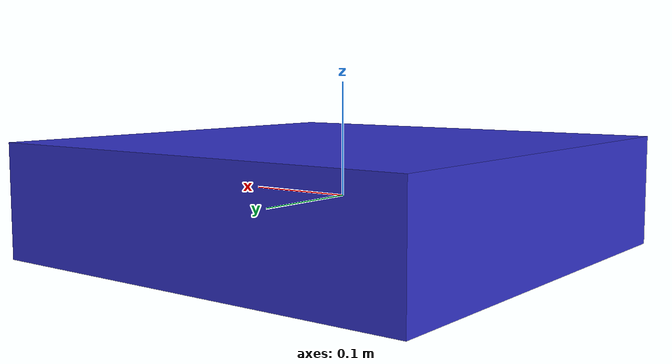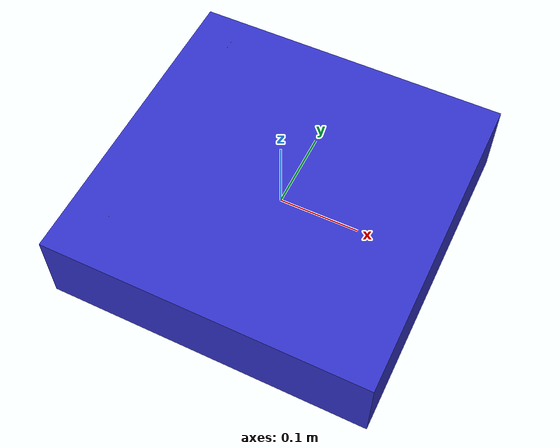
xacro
<?xml version="1.0"?>
<robot xmlns:xacro="http://www.ros.org/wiki/xacro" name="4lun">

  <!-- Constants -->
  <xacro:property name="base_size" value="0.4" />
  <xacro:property name="wheel_radius" value="0.05" />
  <xacro:property name="wheel_width" value="0.04" />
  <xacro:property name="wheel_base_x" value="0.3" />
  <xacro:property name="wheel_base_y" value="0.3" />

  <!-- Base Link -->
  <link name="base_link">
    <visual>
      <geometry>
        <box size="${base_size} ${base_size} 0.1"/>
      </geometry>
      <material name="blue">
        <color rgba="0.2 0.2 0.8 1"/>
      </material>
    </visual>
    <collision>
      <geometry>
        <box size="${base_size} ${base_size} 0.1"/>
      </geometry>
    </collision>
    <inertial>
      <mass value="10"/>
      <inertia ixx="0.1" ixy="0" ixz="0" iyy="0.1" iyz="0" izz="0.1"/>
    </inertial>
  </link>

  <!-- Wheel Macro -->
  <xacro:macro name="wheel" params="prefix x_offset y_offset">
    <link name="${prefix}_wheel_link">
      <visual>
        <geometry>
          <cylinder radius="${wheel_radius}" length="${wheel_width}"/>
        </geometry>
        <material name="black">
          <color rgba="0.1 0.1 0.1 1"/>
        </material>
      </visual>
      <collision>
        <geometry>
          <cylinder radius="${wheel_radius}" length="${wheel_width}"/>
        </geometry>
      </collision>
      <inertial>
        <mass value="1"/>
        <inertia ixx="0.001" ixy="0" ixz="0" iyy="0.001" iyz="0" izz="0.001"/>
      </inertial>
    </link>

    <joint name="${prefix}_wheel_joint" type="continuous">
      <parent link="base_link"/>
      <child link="${prefix}_wheel_link"/>
      <origin xyz="${x_offset} ${y_offset} 0" rpy="-1.5707 0 0"/>
      <axis xyz="0 0 1"/>
    </joint>
  </xacro:macro>

  <xacro:wheel prefix="front_left" x_offset="${wheel_base_x/2}" y_offset="${wheel_base_y/2}" />
  <xacro:wheel prefix="front_right" x_offset="${wheel_base_x/2}" y_offset="-${wheel_base_y/2}" />
  <xacro:wheel prefix="rear_left" x_offset="-${wheel_base_x/2}" y_offset="${wheel_base_y/2}" />
  <xacro:wheel prefix="rear_right" x_offset="-${wheel_base_x/2}" y_offset="-${wheel_base_y/2}" />

  <!-- Gazebo Mecanum Drive Plugin -->
  <gazebo>
    <plugin name="mecanum_drive_controller" filename="libgazebo_ros_mecanum_drive.so">
      <ros>
        <namespace>/</namespace>
      </ros>
      <command_topic>cmd_vel</command_topic>
      <odometry_topic>odom</odometry_topic>
      <odometry_frame>odom</odometry_frame>
      <robot_base_frame>base_link</robot_base_frame>

      <front_left_joint>front_left_wheel_joint</front_left_joint>
      <front_right_joint>front_right_wheel_joint</front_right_joint>
      <rear_left_joint>rear_left_wheel_joint</rear_left_joint>
      <rear_right_joint>rear_right_wheel_joint</rear_right_joint>

      <publish_odom>true</publish_odom>
      <publish_odom_tf>true</publish_odom_tf>
      <update_rate>30.0</update_rate>
    </plugin>
  </gazebo>

</robot>
